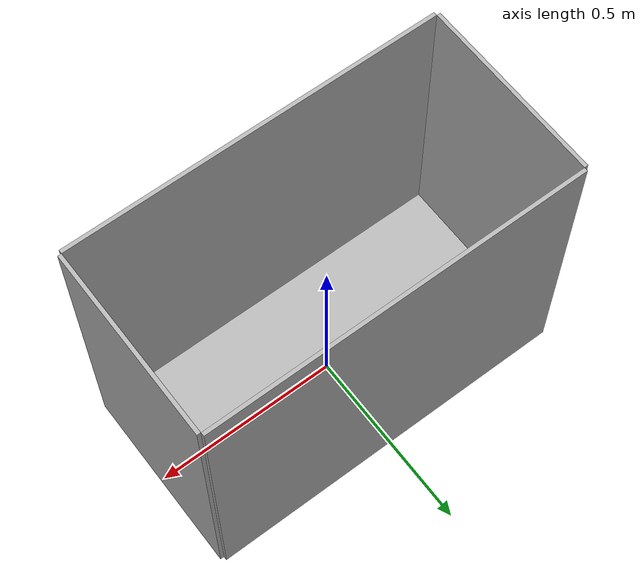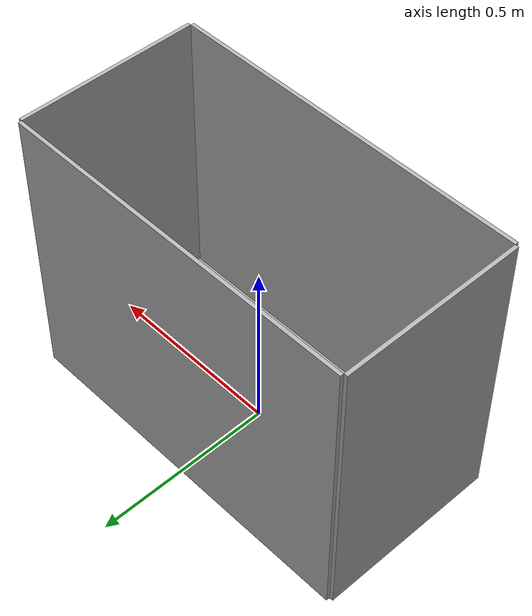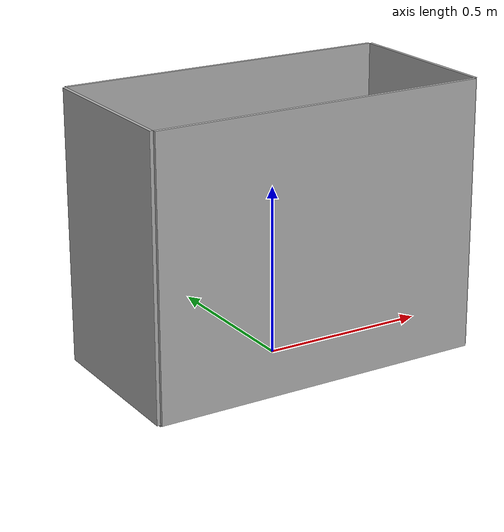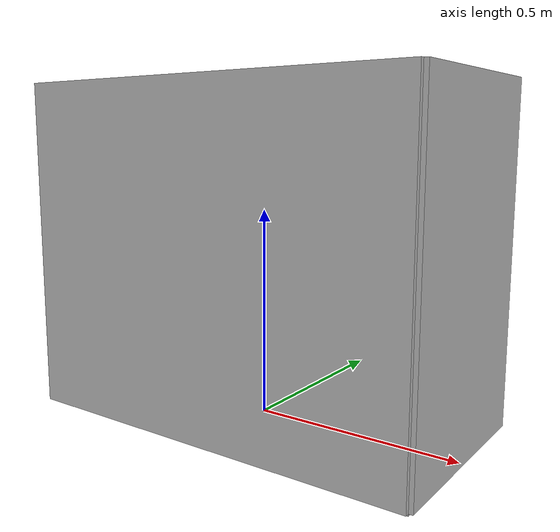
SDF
<?xml version='1.0'?>
<sdf version='1.6'>
  <model name='target_bin'>
    <link name='link_0'>
      <pose frame=''>0 0 0 0 0 0</pose>
      <inertial>
        <mass>5</mass>
        <inertia>
          <ixx>0.166667</ixx>
          <ixy>0</ixy>
          <ixz>0</ixz>
          <iyy>0.166667</iyy>
          <iyz>0</iyz>
          <izz>0.166667</izz>
        </inertia>
        <pose frame=''>0 0 0 0 0 0</pose>
      </inertial>
      <gravity>1</gravity>
      <self_collide>0</self_collide>
      <kinematic>0</kinematic>
      <visual name='visual'>
        <pose frame=''>0 0 0 0 0 0</pose>
        <geometry>
          <box>
            <size>1 0.5 0.01</size>
          </box>
        </geometry>
        <material>
          <lighting>1</lighting>
          <script>
            <uri>file://models/target_bin/materials/scripts</uri>
            <uri>file://models/target_bin/materials/textures</uri>
            <name>WoodTexture/Image</name>
          </script>
          <ambient>0.3 0.3 0.3 1</ambient>
          <diffuse>0.7 0.7 0.7 1</diffuse>
          <specular>0.01 0.01 0.01 1</specular>
          <emissive>0 0 0 1</emissive>
          <shader type='vertex'>
            <normal_map>__default__</normal_map>
          </shader>
        </material>
        <cast_shadows>1</cast_shadows>
        <transparency>0</transparency>
      </visual>
      <collision name='collision'>
        <laser_retro>0</laser_retro>
        <max_contacts>10</max_contacts>
        <pose frame=''>0 0 0 0 0 0</pose>
        <geometry>
          <box>
            <size>1 0.5 0.01</size>
          </box>
        </geometry>
        <surface>
          <friction>
            <ode>
              <mu>1</mu>
              <mu2>1</mu2>
              <fdir1>0 0 0</fdir1>
              <slip1>0</slip1>
              <slip2>0</slip2>
            </ode>
            <torsional>
              <coefficient>1</coefficient>
              <patch_radius>0</patch_radius>
              <surface_radius>0</surface_radius>
              <use_patch_radius>1</use_patch_radius>
              <ode>
                <slip>0</slip>
              </ode>
            </torsional>
          </friction>
          <bounce>
            <restitution_coefficient>0</restitution_coefficient>
            <threshold>1e+06</threshold>
          </bounce>
          <contact>
            <collide_without_contact>0</collide_without_contact>
            <collide_without_contact_bitmask>1</collide_without_contact_bitmask>
            <collide_bitmask>1</collide_bitmask>
            <ode>
              <soft_cfm>0</soft_cfm>
              <soft_erp>0.2</soft_erp>
              <kp>1e+13</kp>
              <kd>1</kd>
              <max_vel>0.01</max_vel>
              <min_depth>0</min_depth>
            </ode>
            <bullet>
              <split_impulse>1</split_impulse>
              <split_impulse_penetration_threshold>-0.01</split_impulse_penetration_threshold>
              <soft_cfm>0</soft_cfm>
              <soft_erp>0.2</soft_erp>
              <kp>1e+13</kp>
              <kd>1</kd>
            </bullet>
          </contact>
        </surface>
      </collision>
    </link>
    <link name='link_1'>
      <pose frame=''>-0.505 0 0.4 0 0 0</pose>
      <inertial>
        <mass>5</mass>
        <inertia>
          <ixx>0.166667</ixx>
          <ixy>0</ixy>
          <ixz>0</ixz>
          <iyy>0.166667</iyy>
          <iyz>0</iyz>
          <izz>0.166667</izz>
        </inertia>
        <pose frame=''>0 0 0 0 0 0</pose>
      </inertial>
      <gravity>1</gravity>
      <self_collide>0</self_collide>
      <kinematic>0</kinematic>
      <visual name='visual'>
        <pose frame=''>0 0 0 0 0 0</pose>
        <geometry>
          <box>
            <size>0.01 0.5 0.8</size>
          </box>
        </geometry>
        <material>
          <lighting>1</lighting>
          <script>
            <uri>file://models/target_bin/materials/scripts</uri>
            <uri>file://models/target_bin/materials/textures</uri>
            <name>WoodTexture/Image</name>
          </script>
          <ambient>0.3 0.3 0.3 1</ambient>
          <diffuse>0.7 0.7 0.7 1</diffuse>
          <specular>0.01 0.01 0.01 1</specular>
          <emissive>0 0 0 1</emissive>
          <shader type='vertex'>
            <normal_map>__default__</normal_map>
          </shader>
        </material>
        <cast_shadows>1</cast_shadows>
        <transparency>0</transparency>
      </visual>
      <collision name='collision'>
        <laser_retro>0</laser_retro>
        <max_contacts>10</max_contacts>
        <pose frame=''>0 0 0 0 0 0</pose>
        <geometry>
          <box>
            <size>0.01 0.5 0.8</size>
          </box>
        </geometry>
        <surface>
          <friction>
            <ode>
              <mu>1</mu>
              <mu2>1</mu2>
              <fdir1>0 0 0</fdir1>
              <slip1>0</slip1>
              <slip2>0</slip2>
            </ode>
            <torsional>
              <coefficient>1</coefficient>
              <patch_radius>0</patch_radius>
              <surface_radius>0</surface_radius>
              <use_patch_radius>1</use_patch_radius>
              <ode>
                <slip>0</slip>
              </ode>
            </torsional>
          </friction>
          <bounce>
            <restitution_coefficient>0</restitution_coefficient>
            <threshold>1e+06</threshold>
          </bounce>
          <contact>
            <collide_without_contact>0</collide_without_contact>
            <collide_without_contact_bitmask>1</collide_without_contact_bitmask>
            <collide_bitmask>1</collide_bitmask>
            <ode>
              <soft_cfm>0</soft_cfm>
              <soft_erp>0.2</soft_erp>
              <kp>1e+13</kp>
              <kd>1</kd>
              <max_vel>0.01</max_vel>
              <min_depth>0</min_depth>
            </ode>
            <bullet>
              <split_impulse>1</split_impulse>
              <split_impulse_penetration_threshold>-0.01</split_impulse_penetration_threshold>
              <soft_cfm>0</soft_cfm>
              <soft_erp>0.2</soft_erp>
              <kp>1e+13</kp>
              <kd>1</kd>
            </bullet>
          </contact>
        </surface>
      </collision>
    </link>
    <link name='link_2'>
      <pose frame=''>0 0.255 0.4 0 0 0</pose>
      <inertial>
        <mass>5</mass>
        <inertia>
          <ixx>0.166667</ixx>
          <ixy>0</ixy>
          <ixz>0</ixz>
          <iyy>0.166667</iyy>
          <iyz>0</iyz>
          <izz>0.166667</izz>
        </inertia>
        <pose frame=''>0 0 0 0 0 0</pose>
      </inertial>
      <gravity>1</gravity>
      <self_collide>0</self_collide>
      <kinematic>0</kinematic>
      <visual name='visual'>
        <pose frame=''>0 0 0 0 0 0</pose>
        <geometry>
          <box>
            <size>1 0.01 0.8</size>
          </box>
        </geometry>
        <material>
          <lighting>1</lighting>
          <script>
            <uri>file://models/target_bin/materials/scripts</uri>
            <uri>file://models/target_bin/materials/textures</uri>
            <name>WoodTexture/Image</name>
          </script>
          <ambient>0.3 0.3 0.3 1</ambient>
          <diffuse>0.7 0.7 0.7 1</diffuse>
          <specular>0.01 0.01 0.01 1</specular>
          <emissive>0 0 0 1</emissive>
          <shader type='vertex'>
            <normal_map>__default__</normal_map>
          </shader>
        </material>
        <cast_shadows>1</cast_shadows>
        <transparency>0</transparency>
      </visual>
      <collision name='collision'>
        <laser_retro>0</laser_retro>
        <max_contacts>10</max_contacts>
        <pose frame=''>0 0 0 0 0 0</pose>
        <geometry>
          <box>
            <size>1 0.01 0.8</size>
          </box>
        </geometry>
        <surface>
          <friction>
            <ode>
              <mu>1</mu>
              <mu2>1</mu2>
              <fdir1>0 0 0</fdir1>
              <slip1>0</slip1>
              <slip2>0</slip2>
            </ode>
            <torsional>
              <coefficient>1</coefficient>
              <patch_radius>0</patch_radius>
              <surface_radius>0</surface_radius>
              <use_patch_radius>1</use_patch_radius>
              <ode>
                <slip>0</slip>
              </ode>
            </torsional>
          </friction>
          <bounce>
            <restitution_coefficient>0</restitution_coefficient>
            <threshold>1e+06</threshold>
          </bounce>
          <contact>
            <collide_without_contact>0</collide_without_contact>
            <collide_without_contact_bitmask>1</collide_without_contact_bitmask>
            <collide_bitmask>1</collide_bitmask>
            <ode>
              <soft_cfm>0</soft_cfm>
              <soft_erp>0.2</soft_erp>
              <kp>1e+13</kp>
              <kd>1</kd>
              <max_vel>0.01</max_vel>
              <min_depth>0</min_depth>
            </ode>
            <bullet>
              <split_impulse>1</split_impulse>
              <split_impulse_penetration_threshold>-0.01</split_impulse_penetration_threshold>
              <soft_cfm>0</soft_cfm>
              <soft_erp>0.2</soft_erp>
              <kp>1e+13</kp>
              <kd>1</kd>
            </bullet>
          </contact>
        </surface>
      </collision>
    </link>
    <link name='link_3'>
      <pose frame=''>0.505 0 0.4 0 0 0</pose>
      <inertial>
        <mass>5</mass>
        <inertia>
          <ixx>0.166667</ixx>
          <ixy>0</ixy>
          <ixz>0</ixz>
          <iyy>0.166667</iyy>
          <iyz>0</iyz>
          <izz>0.166667</izz>
        </inertia>
        <pose frame=''>0 0 0 0 0 0</pose>
      </inertial>
      <gravity>1</gravity>
      <self_collide>0</self_collide>
      <kinematic>0</kinematic>
      <visual name='visual'>
        <pose frame=''>0 0 0 0 0 0</pose>
        <geometry>
          <box>
            <size>0.01 0.5 0.8</size>
          </box>
        </geometry>
        <material>
          <lighting>1</lighting>
          <script>
            <uri>file://models/target_bin/materials/scripts</uri>
            <uri>file://models/target_bin/materials/textures</uri>
            <name>WoodTexture/Image</name>
          </script>
          <ambient>0.3 0.3 0.3 1</ambient>
          <diffuse>0.7 0.7 0.7 1</diffuse>
          <specular>0.01 0.01 0.01 1</specular>
          <emissive>0 0 0 1</emissive>
          <shader type='vertex'>
            <normal_map>__default__</normal_map>
          </shader>
        </material>
        <cast_shadows>1</cast_shadows>
        <transparency>0</transparency>
      </visual>
      <collision name='collision'>
        <laser_retro>0</laser_retro>
        <max_contacts>10</max_contacts>
        <pose frame=''>0 0 0 0 0 0</pose>
        <geometry>
          <box>
            <size>0.01 0.5 0.8</size>
          </box>
        </geometry>
        <surface>
          <friction>
            <ode>
              <mu>1</mu>
              <mu2>1</mu2>
              <fdir1>0 0 0</fdir1>
              <slip1>0</slip1>
              <slip2>0</slip2>
            </ode>
            <torsional>
              <coefficient>1</coefficient>
              <patch_radius>0</patch_radius>
              <surface_radius>0</surface_radius>
              <use_patch_radius>1</use_patch_radius>
              <ode>
                <slip>0</slip>
              </ode>
            </torsional>
          </friction>
          <bounce>
            <restitution_coefficient>0</restitution_coefficient>
            <threshold>1e+06</threshold>
          </bounce>
          <contact>
            <collide_without_contact>0</collide_without_contact>
            <collide_without_contact_bitmask>1</collide_without_contact_bitmask>
            <collide_bitmask>1</collide_bitmask>
            <ode>
              <soft_cfm>0</soft_cfm>
              <soft_erp>0.2</soft_erp>
              <kp>1e+13</kp>
              <kd>1</kd>
              <max_vel>0.01</max_vel>
              <min_depth>0</min_depth>
            </ode>
            <bullet>
              <split_impulse>1</split_impulse>
              <split_impulse_penetration_threshold>-0.01</split_impulse_penetration_threshold>
              <soft_cfm>0</soft_cfm>
              <soft_erp>0.2</soft_erp>
              <kp>1e+13</kp>
              <kd>1</kd>
            </bullet>
          </contact>
        </surface>
      </collision>
    </link>
    <link name='link_4'>
      <pose frame=''>0 -0.255 0.4 0 0 0</pose>
      <inertial>
        <mass>5</mass>
        <inertia>
          <ixx>0.166667</ixx>
          <ixy>0</ixy>
          <ixz>0</ixz>
          <iyy>0.166667</iyy>
          <iyz>0</iyz>
          <izz>0.166667</izz>
        </inertia>
        <pose frame=''>0 0 0 0 0 0</pose>
      </inertial>
      <gravity>1</gravity>
      <self_collide>0</self_collide>
      <kinematic>0</kinematic>
      <visual name='visual'>
        <pose frame=''>0 0 0 0 0 0</pose>
        <geometry>
          <box>
            <size>1 0.01 0.8</size>
          </box>
        </geometry>
        <material>
          <lighting>1</lighting>
          <script>
            <uri>file://models/target_bin/materials/scripts</uri>
            <uri>file://models/target_bin/materials/textures</uri>
            <name>WoodTexture/Image</name>
          </script>
          <ambient>0.3 0.3 0.3 1</ambient>
          <diffuse>0.7 0.7 0.7 1</diffuse>
          <specular>0.01 0.01 0.01 1</specular>
          <emissive>0 0 0 1</emissive>
          <shader type='vertex'>
            <normal_map>__default__</normal_map>
          </shader>
        </material>
        <cast_shadows>1</cast_shadows>
        <transparency>0</transparency>
      </visual>
      <collision name='collision'>
        <laser_retro>0</laser_retro>
        <max_contacts>10</max_contacts>
        <pose frame=''>0 0 0 0 0 0</pose>
        <geometry>
          <box>
            <size>1 0.01 0.8</size>
          </box>
        </geometry>
        <surface>
          <friction>
            <ode>
              <mu>1</mu>
              <mu2>1</mu2>
              <fdir1>0 0 0</fdir1>
              <slip1>0</slip1>
              <slip2>0</slip2>
            </ode>
            <torsional>
              <coefficient>1</coefficient>
              <patch_radius>0</patch_radius>
              <surface_radius>0</surface_radius>
              <use_patch_radius>1</use_patch_radius>
              <ode>
                <slip>0</slip>
              </ode>
            </torsional>
          </friction>
          <bounce>
            <restitution_coefficient>0</restitution_coefficient>
            <threshold>1e+06</threshold>
          </bounce>
          <contact>
            <collide_without_contact>0</collide_without_contact>
            <collide_without_contact_bitmask>1</collide_without_contact_bitmask>
            <collide_bitmask>1</collide_bitmask>
            <ode>
              <soft_cfm>0</soft_cfm>
              <soft_erp>0.2</soft_erp>
              <kp>1e+13</kp>
              <kd>1</kd>
              <max_vel>0.01</max_vel>
              <min_depth>0</min_depth>
            </ode>
            <bullet>
              <split_impulse>1</split_impulse>
              <split_impulse_penetration_threshold>-0.01</split_impulse_penetration_threshold>
              <soft_cfm>0</soft_cfm>
              <soft_erp>0.2</soft_erp>
              <kp>1e+13</kp>
              <kd>1</kd>
            </bullet>
          </contact>
        </surface>
      </collision>
    </link>
    <joint name='link_0_JOINT_0' type='fixed'>
      <parent>link_0</parent>
      <child>link_1</child>
      <pose frame=''>0 0 0 0 0 0</pose>
      <physics>
        <ode>
          <limit>
            <cfm>0</cfm>
            <erp>0.2</erp>
          </limit>
          <suspension>
            <cfm>0</cfm>
            <erp>0.2</erp>
          </suspension>
        </ode>
      </physics>
    </joint>
    <joint name='link_0_JOINT_1' type='fixed'>
      <parent>link_0</parent>
      <child>link_2</child>
      <pose frame=''>0 0 0 0 0 0</pose>
      <physics>
        <ode>
          <limit>
            <cfm>0</cfm>
            <erp>0.2</erp>
          </limit>
          <suspension>
            <cfm>0</cfm>
            <erp>0.2</erp>
          </suspension>
        </ode>
      </physics>
    </joint>
    <joint name='link_0_JOINT_2' type='fixed'>
      <parent>link_0</parent>
      <child>link_3</child>
      <pose frame=''>0 0 0 0 0 0</pose>
      <physics>
        <ode>
          <limit>
            <cfm>0</cfm>
            <erp>0.2</erp>
          </limit>
          <suspension>
            <cfm>0</cfm>
            <erp>0.2</erp>
          </suspension>
        </ode>
      </physics>
    </joint>
    <joint name='link_0_JOINT_3' type='fixed'>
      <parent>link_0</parent>
      <child>link_4</child>
      <pose frame=''>0 0 0 0 0 0</pose>
      <physics>
        <ode>
          <limit>
            <cfm>0</cfm>
            <erp>0.2</erp>
          </limit>
          <suspension>
            <cfm>0</cfm>
            <erp>0.2</erp>
          </suspension>
        </ode>
      </physics>
    </joint>
    <static>1</static>
    <allow_auto_disable>1</allow_auto_disable>
  </model>
</sdf>
